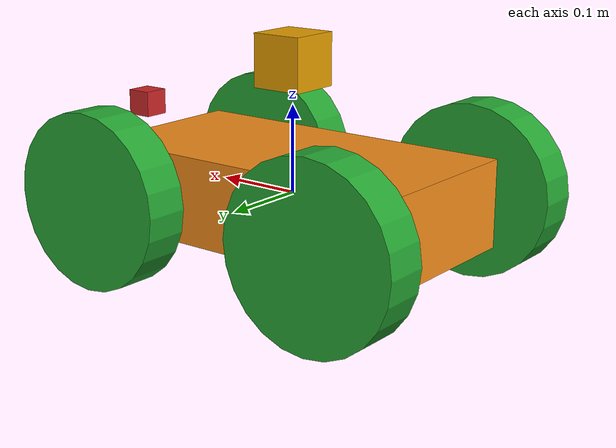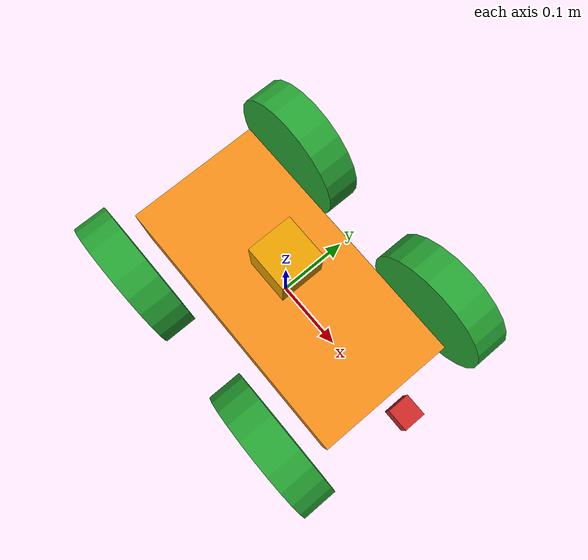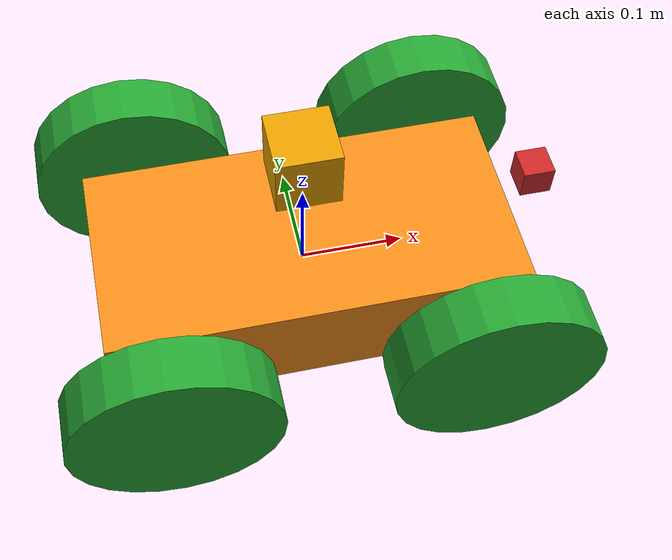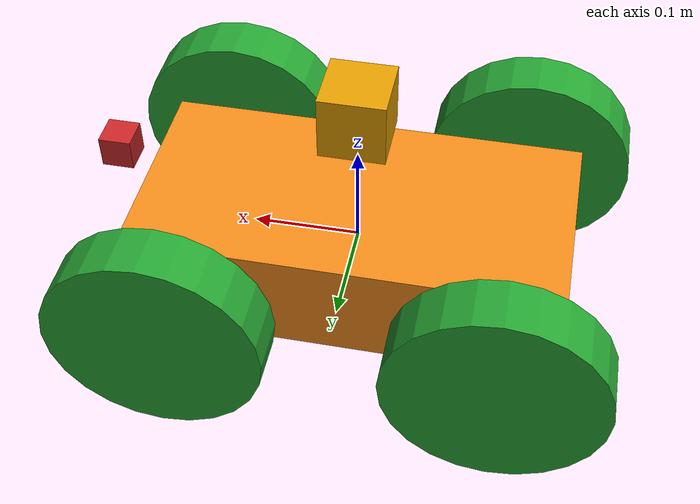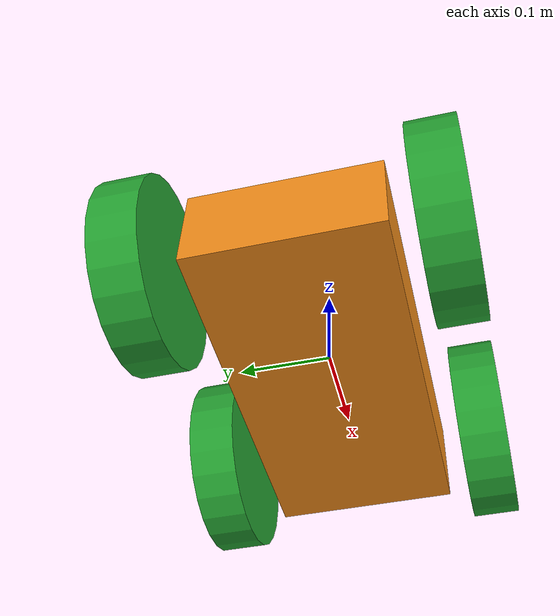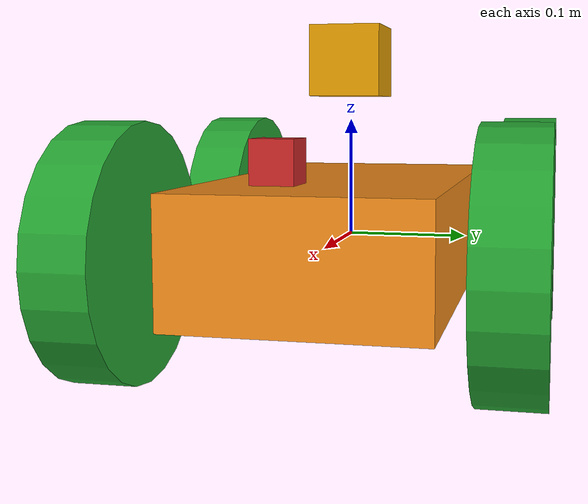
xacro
<?xml version='1.0'?>
<robot name="my_robot" xmlns:xacro="http://www.ros.org/wiki/xacro">

  <xacro:include filename="$(find erc_sor_ros_session1)/urdf/materials.xacro"/>
  <xacro:include filename="$(find erc_sor_ros_session1)/urdf/sor_bot.gazebo"/>

  <xacro:macro name="box_inertia" params="m l w h">
    <inertia ixx="${(m*(w*w+h*h))/12}" ixy="0" ixz="0"
             iyy="${(m*(l*l+h*h))/12}" iyz="0"
             izz="${(m*(l*l+w*w))/12}"/>
  </xacro:macro>

  <xacro:macro name="cylinder_inertia" params="m r h">
    <inertia ixx="${(m*(3*r*r+h*h))/12}" ixy="0" ixz="0"
             iyy="${(m*(3*r*r+h*h))/12}" iyz="0"
             izz="${(m*r*r)/2}"/>
  </xacro:macro>

  <xacro:macro name="sphere_inertia" params="m r">
    <inertia ixx="${(2*m*r*r)/5}" ixy="0" ixz="0"
             iyy="${(2*m*r*r)/5}" iyz="0"
             izz="${(2*m*r*r)/5}"/>
  </xacro:macro>

  <!-- ==================== BASE ==================== -->

  <link name="base_footprint"/>

  <joint name="base_footprint_joint" type="fixed">
    <origin xyz="0 0 0" rpy="0 0 0"/>
    <parent link="base_footprint"/>
    <child  link="base_link"/>
  </joint>

  <link name="base_link">
    <pose>0 0 0.1 0 0 0</pose>
    <inertial>
      <mass value="15.0"/>
      <origin xyz="0.0 0 0" rpy="0 0 0"/>
      <xacro:box_inertia m="15.0" l="0.4" w="0.2" h="0.1"/>
    </inertial>
    <collision name="collision">
      <origin xyz="0 0 0" rpy="0 0 0"/>
      <geometry><box size=".4 .2 .1"/></geometry>
    </collision>
    <visual name="base_link_visual">
      <origin xyz="0 0 0" rpy="0 0 0"/>
      <geometry><box size=".4 .2 .1"/></geometry>
      <material name="orange"/>
    </visual>
  </link>

  <!-- ==================== WHEELS (4-wheel skid-steer) ==================== -->

  <xacro:macro name="wheel" params="prefix x_pos y_pos">
    <joint type="continuous" name="${prefix}_wheel_joint">
      <origin xyz="${x_pos} ${y_pos} 0" rpy="0 0 0"/>
      <child  link="${prefix}_wheel"/>
      <parent link="base_link"/>
      <axis xyz="0 1 0" rpy="0 0 0"/>
      <limit effort="100" velocity="10"/>
      <dynamics damping="1.0" friction="1.0"/>
    </joint>
    <link name="${prefix}_wheel">
      <inertial>
        <mass value="5.0"/>
        <origin xyz="0 0 0" rpy="0 1.5707 1.5707"/>
        <xacro:cylinder_inertia m="5.0" r="0.1" h="0.05"/>
      </inertial>
      <collision>
        <origin xyz="0 0 0" rpy="0 1.5707 1.5707"/>
        <geometry><cylinder radius=".1" length=".05"/></geometry>
      </collision>
      <visual name="${prefix}_wheel_visual">
        <origin xyz="0 0 0" rpy="0 1.5707 1.5707"/>
        <geometry><cylinder radius=".1" length=".05"/></geometry>
        <material name="green"/>
      </visual>
    </link>
  </xacro:macro>

  <xacro:wheel prefix="front_left"  x_pos=" 0.15" y_pos=" 0.15"/>
  <xacro:wheel prefix="front_right" x_pos=" 0.15" y_pos="-0.15"/>
  <xacro:wheel prefix="rear_left"   x_pos="-0.15" y_pos=" 0.15"/>
  <xacro:wheel prefix="rear_right"  x_pos="-0.15" y_pos="-0.15"/>

  <!-- ==================== CAMERA ==================== -->

  <joint type="fixed" name="camera_joint">
    <origin xyz="0.225 0 0.075" rpy="0 0 0"/>
    <child link="camera_link"/>
    <parent link="base_link"/>
    <axis xyz="0 1 0" />
  </joint>

  <link name='camera_link'>
    <pose>0 0 0 0 0 0</pose>
    <inertial>
      <mass value="0.1"/>
      <origin xyz="0 0 0" rpy="0 0 0"/>
      <inertia ixx="1e-6" ixy="0" ixz="0"
               iyy="1e-6" iyz="0"
               izz="1e-6"/>
    </inertial>
    <collision name='collision'>
      <origin xyz="0 0 0" rpy="0 0 0"/>
      <geometry><box size=".03 .03 .03"/></geometry>
    </collision>
    <visual name='camera_link_visual'>
      <origin xyz="0 0 0" rpy="0 0 0"/>
      <geometry><box size=".03 .03 .03"/></geometry>
    </visual>
  </link>

  <!-- optical frame (ROS camera convention: x right, y down, z forward) -->
  <joint type="fixed" name="camera_optical_joint">
    <origin xyz="0 0 0" rpy="-1.5707 0 -1.5707"/>
    <child link="camera_link_optical"/>
    <parent link="camera_link"/>
  </joint>

  <link name="camera_link_optical"/>

  <!-- ==================== 2D LIDAR ==================== -->

  <joint type="fixed" name="scan_joint">
    <origin xyz="0.0 0 0.15" rpy="0 0 0"/>
    <child link="scan_link"/>
    <parent link="base_link"/>
    <axis xyz="0 1 0" rpy="0 0 0"/>
  </joint>

  <link name='scan_link'>
    <inertial>
      <mass value="1e-5"/>
      <origin xyz="0 0 0" rpy="0 0 0"/>
      <inertia ixx="1e-6" ixy="0" ixz="0"
               iyy="1e-6" iyz="0"
               izz="1e-6"/>
    </inertial>
    <collision name='collision'>
      <origin xyz="0 0 0" rpy="0 0 0"/>
      <geometry><box size=".06 .06 .06"/></geometry>
    </collision>
    <visual name='scan_link_visual'>
      <origin xyz="0 0 0" rpy="0 0 0"/>
      <geometry><box size=".06 .06 .06"/></geometry>
    </visual>
  </link>

  <!-- ==================== IMU ==================== -->

  <joint name="imu_joint" type="fixed">
    <origin xyz="0 0 0" rpy="0 0 0" />
    <parent link="base_link"/>
    <child link="imu_link" />
  </joint>

  <link name="imu_link"/>

</robot>
